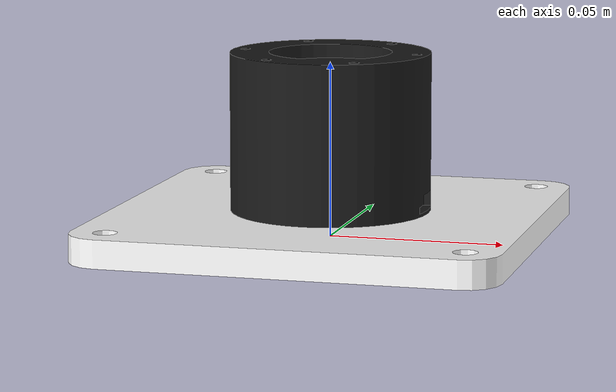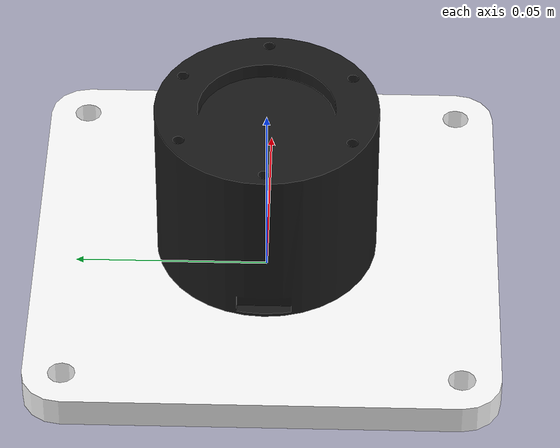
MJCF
<mujoco model="base_link">
  <default>
    <default class="visual">
      <geom group="2" type="mesh" contype="0" conaffinity="0"/>
    </default>
    <default class="collision">
      <geom group="3" type="mesh"/>
    </default>
  </default>
  <asset>
    <material name="motor.001" specular="0.5" shininess="0.25" rgba="0.100000 0.100000 0.100000 1.000000"/>
    <material name="white_metal" specular="0.5" shininess="0.25" rgba="1.000000 1.000000 1.000000 1.000000"/>
    <mesh file="base_link_0.obj"/>
    <mesh file="base_link_1.obj"/>
    <mesh file="base_link_collision_0.obj"/>
    <mesh file="base_link_collision_1.obj"/>
  </asset>
  <worldbody>
    <body name="base_link">
      <geom mesh="base_link_0" material="motor.001" class="visual"/>
      <geom mesh="base_link_1" material="white_metal" class="visual"/>
      <geom mesh="base_link_collision_0" rgba="0.7931320546490651 0.5853788277623556 0.8643034338863476 1" class="collision"/>
      <geom mesh="base_link_collision_1" rgba="0.3598458948917057 0.12443252613636635 0.5899290896558532 1" class="collision"/>
    </body>
  </worldbody>
</mujoco>
